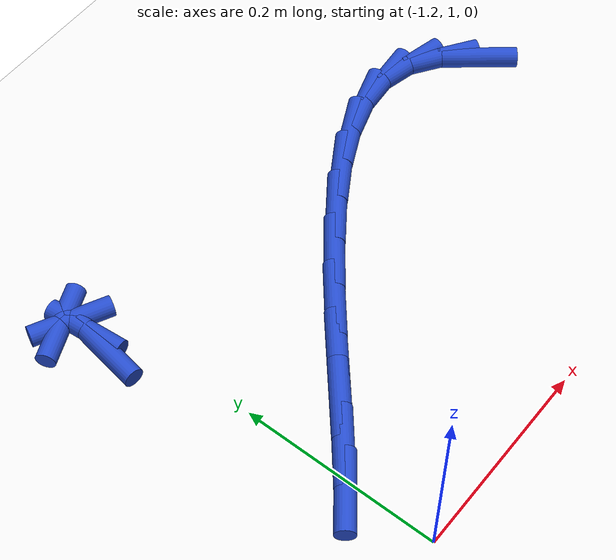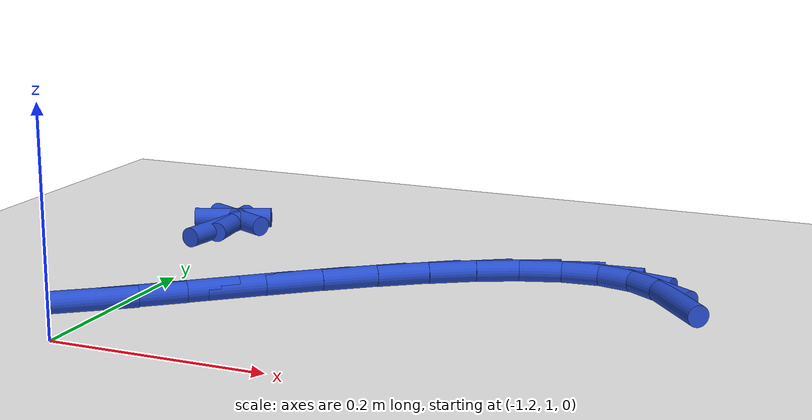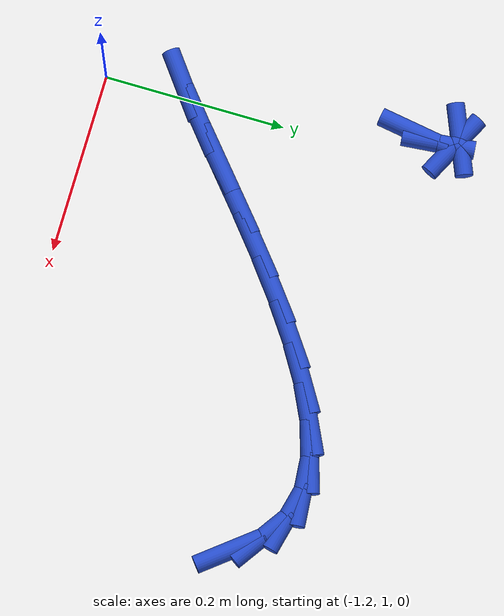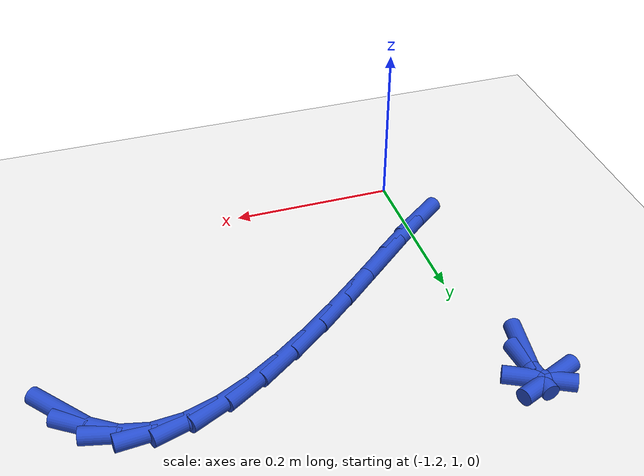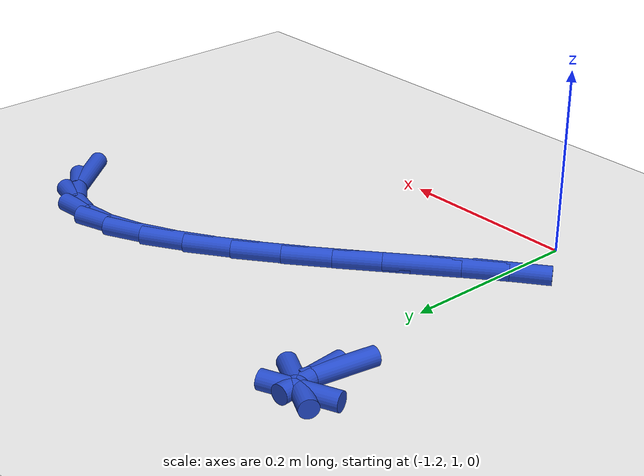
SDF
<sdf version="1.6">
 <world name="default">
  <model name="ground_plane">
   <static>1</static>
   <link name="link">
    <collision name="collision">
     <geometry><plane><normal>0 0 1</normal><size>100 100</size></plane></geometry>
     <surface><friction><ode><mu>100</mu><mu2>50</mu2></ode></friction></surface>
    </collision>
    <visual name="visual">
     <cast_shadows>0</cast_shadows>
     <geometry><plane><normal>0 0 1</normal><size>100 100</size></plane></geometry>
     <material>
      <script><uri>file://media/materials/scripts/gazebo.material</uri><name>Gazebo/WhiteGlow</name></script>
     </material>
    </visual>
   </link>
  </model>
  <model name="line">
   <link name="link_52">
    <pose>-0.7400035297305314 1.2762607417762513 0.01 0 1.57 -0.8914880120880703</pose>
    <collision name="collision">
     <geometry><cylinder><radius>0.01</radius><length>0.08</length></cylinder></geometry>
    </collision>
    <visual name="visual">
     <material>
      <script><name>Gazebo/Blue</name><uri>file://media/materials/scripts/gazebo.material</uri></script>
     </material>
     <geometry><cylinder><radius>0.01</radius><length>0.08</length></cylinder></geometry>
    </visual>
   </link>
   <link name="link_53">
    <pose>-0.7635379911036551 1.3054049354515875 0.01 0 1.57 -0.5997950704235611</pose>
    <collision name="collision">
     <geometry><cylinder><radius>0.01</radius><length>0.08</length></cylinder></geometry>
    </collision>
    <visual name="visual">
     <material>
      <script><name>Gazebo/Blue</name><uri>file://media/materials/scripts/gazebo.material</uri></script>
     </material>
     <geometry><cylinder><radius>0.01</radius><length>0.08</length></cylinder></geometry>
    </visual>
   </link>
   <link name="link_54">
    <pose>-0.7918750884386484 1.3247828628877072 0.01 0 1.57 -0.2316319192950246</pose>
    <collision name="collision">
     <geometry><cylinder><radius>0.01</radius><length>0.08</length></cylinder></geometry>
    </collision>
    <visual name="visual">
     <material>
      <script><name>Gazebo/Blue</name><uri>file://media/materials/scripts/gazebo.material</uri></script>
     </material>
     <geometry><cylinder><radius>0.01</radius><length>0.08</length></cylinder></geometry>
    </visual>
   </link>
   <link name="link_55">
    <pose>-0.8243574146994715 1.3324443200263412 0.01 0 1.57 0.08634510716277952</pose>
    <collision name="collision">
     <geometry><cylinder><radius>0.01</radius><length>0.08</length></cylinder></geometry>
    </collision>
    <visual name="visual">
     <material>
      <script><name>Gazebo/Blue</name><uri>file://media/materials/scripts/gazebo.material</uri></script>
     </material>
     <geometry><cylinder><radius>0.01</radius><length>0.08</length></cylinder></geometry>
    </visual>
   </link>
   <link name="link_56">
    <pose>-0.8602521045232228 1.32933726381711 0.01 0 1.57 0.30782062605455734</pose>
    <collision name="collision">
     <geometry><cylinder><radius>0.01</radius><length>0.08</length></cylinder></geometry>
    </collision>
    <visual name="visual">
     <material>
      <script><name>Gazebo/Blue</name><uri>file://media/materials/scripts/gazebo.material</uri></script>
     </material>
     <geometry><cylinder><radius>0.01</radius><length>0.08</length></cylinder></geometry>
    </visual>
   </link>
   <link name="link_57">
    <pose>-0.8988088633813948 1.3170790608064527 0.01 0 1.57 0.45486618898904807</pose>
    <collision name="collision">
     <geometry><cylinder><radius>0.01</radius><length>0.08</length></cylinder></geometry>
    </collision>
    <visual name="visual">
     <material>
      <script><name>Gazebo/Blue</name><uri>file://media/materials/scripts/gazebo.material</uri></script>
     </material>
     <geometry><cylinder><radius>0.01</radius><length>0.08</length></cylinder></geometry>
    </visual>
   </link>
   <link name="link_58">
    <pose>-0.9392773967454789 1.2972870775408096 0.01 0 1.57 0.5532202787380017</pose>
    <collision name="collision">
     <geometry><cylinder><radius>0.01</radius><length>0.08</length></cylinder></geometry>
    </collision>
    <visual name="visual">
     <material>
      <script><name>Gazebo/Blue</name><uri>file://media/materials/scripts/gazebo.material</uri></script>
     </material>
     <geometry><cylinder><radius>0.01</radius><length>0.08</length></cylinder></geometry>
    </visual>
   </link>
   <link name="link_59">
    <pose>-0.9809074100869686 1.2715786805666203 0.01 0 1.57 0.6199031521513331</pose>
    <collision name="collision">
     <geometry><cylinder><radius>0.01</radius><length>0.08</length></cylinder></geometry>
    </collision>
    <visual name="visual">
     <material>
      <script><name>Gazebo/Blue</name><uri>file://media/materials/scripts/gazebo.material</uri></script>
     </material>
     <geometry><cylinder><radius>0.01</radius><length>0.08</length></cylinder></geometry>
    </visual>
   </link>
   <link name="link_60">
    <pose>-1.022948608877355 1.2415712364303242 0.01 0 1.57 0.6648294993551235</pose>
    <collision name="collision">
     <geometry><cylinder><radius>0.01</radius><length>0.08</length></cylinder></geometry>
    </collision>
    <visual name="visual">
     <material>
      <script><name>Gazebo/Blue</name><uri>file://media/materials/scripts/gazebo.material</uri></script>
     </material>
     <geometry><cylinder><radius>0.01</radius><length>0.08</length></cylinder></geometry>
    </visual>
   </link>
   <link name="link_61">
    <pose>-1.0646506985881314 1.2088821116783612 0.01 0 1.57 0.6934222231570188</pose>
    <collision name="collision">
     <geometry><cylinder><radius>0.01</radius><length>0.08</length></cylinder></geometry>
    </collision>
    <visual name="visual">
     <material>
      <script><name>Gazebo/Blue</name><uri>file://media/materials/scripts/gazebo.material</uri></script>
     </material>
     <geometry><cylinder><radius>0.01</radius><length>0.08</length></cylinder></geometry>
    </visual>
   </link>
   <link name="link_62">
    <pose>-1.1052633846907889 1.1751286728571713 0.01 0 1.57 0.7081264490205855</pose>
    <collision name="collision">
     <geometry><cylinder><radius>0.01</radius><length>0.08</length></cylinder></geometry>
    </collision>
    <visual name="visual">
     <material>
      <script><name>Gazebo/Blue</name><uri>file://media/materials/scripts/gazebo.material</uri></script>
     </material>
     <geometry><cylinder><radius>0.01</radius><length>0.08</length></cylinder></geometry>
    </visual>
   </link>
   <link name="link_63">
    <pose>-1.144036372656821 1.1419282865131943 0.01 0 1.57 0.7088806735255654</pose>
    <collision name="collision">
     <geometry><cylinder><radius>0.01</radius><length>0.08</length></cylinder></geometry>
    </collision>
    <visual name="visual">
     <material>
      <script><name>Gazebo/Blue</name><uri>file://media/materials/scripts/gazebo.material</uri></script>
     </material>
     <geometry><cylinder><radius>0.01</radius><length>0.08</length></cylinder></geometry>
    </visual>
   </link>
   <link name="link_64">
    <pose>-1.1802193679577193 1.1108983191928699 0.01 0 1.57 0.6924564770508023</pose>
    <collision name="collision">
     <geometry><cylinder><radius>0.01</radius><length>0.08</length></cylinder></geometry>
    </collision>
    <visual name="visual">
     <material>
      <script><name>Gazebo/Blue</name><uri>file://media/materials/scripts/gazebo.material</uri></script>
     </material>
     <geometry><cylinder><radius>0.01</radius><length>0.08</length></cylinder></geometry>
    </visual>
   </link>
   <link name="link_65">
    <pose>-1.213062076064976 1.0836561374426374 0.01 0 1.57 0.6495487961530885</pose>
    <collision name="collision">
     <geometry><cylinder><radius>0.01</radius><length>0.08</length></cylinder></geometry>
    </collision>
    <visual name="visual">
     <material>
      <script><name>Gazebo/Blue</name><uri>file://media/materials/scripts/gazebo.material</uri></script>
     </material>
     <geometry><cylinder><radius>0.01</radius><length>0.08</length></cylinder></geometry>
    </visual>
   </link>
   <link name="link_77">
    <pose>-1.2333825779933916 1.3378011513544088 0.01 0 1.57 1.409806576259969</pose>
    <collision name="collision">
     <geometry><cylinder><radius>0.01</radius><length>0.08</length></cylinder></geometry>
    </collision>
    <visual name="visual">
     <material>
      <script><name>Gazebo/Blue</name><uri>file://media/materials/scripts/gazebo.material</uri></script>
     </material>
     <geometry><cylinder><radius>0.01</radius><length>0.08</length></cylinder></geometry>
    </visual>
   </link>
   <link name="link_78">
    <pose>-1.2287713575185553 1.3661962140653954 0.01 0 1.57 -1.47868802189867</pose>
    <collision name="collision">
     <geometry><cylinder><radius>0.01</radius><length>0.08</length></cylinder></geometry>
    </collision>
    <visual name="visual">
     <material>
      <script><name>Gazebo/Blue</name><uri>file://media/materials/scripts/gazebo.material</uri></script>
     </material>
     <geometry><cylinder><radius>0.01</radius><length>0.08</length></cylinder></geometry>
    </visual>
   </link>
   <link name="link_79">
    <pose>-1.230330587801069 1.3830765411575356 0.01 0 1.57 -0.46723255166508443</pose>
    <collision name="collision">
     <geometry><cylinder><radius>0.01</radius><length>0.08</length></cylinder></geometry>
    </collision>
    <visual name="visual">
     <material>
      <script><name>Gazebo/Blue</name><uri>file://media/materials/scripts/gazebo.material</uri></script>
     </material>
     <geometry><cylinder><radius>0.01</radius><length>0.08</length></cylinder></geometry>
    </visual>
   </link>
   <link name="link_80">
    <pose>-1.2389074126211805 1.3874034570304183 0.01 0 1.57 0.3965606984909195</pose>
    <collision name="collision">
     <geometry><cylinder><radius>0.01</radius><length>0.08</length></cylinder></geometry>
    </collision>
    <visual name="visual">
     <material>
      <script><name>Gazebo/Blue</name><uri>file://media/materials/scripts/gazebo.material</uri></script>
     </material>
     <geometry><cylinder><radius>0.01</radius><length>0.08</length></cylinder></geometry>
    </visual>
   </link>
  </model>
 </world>
</sdf>
